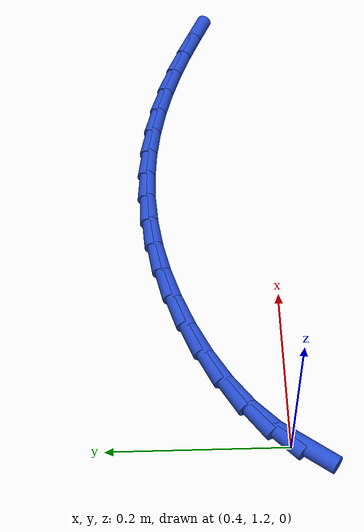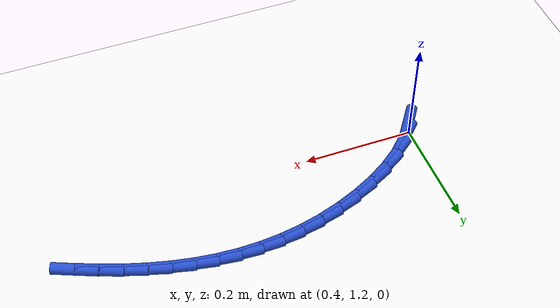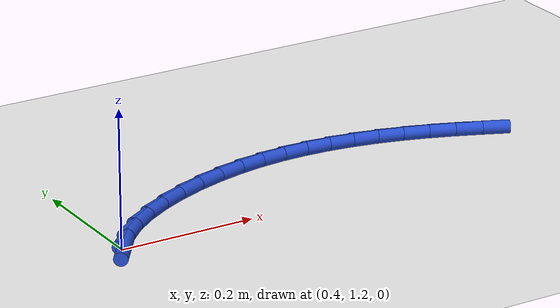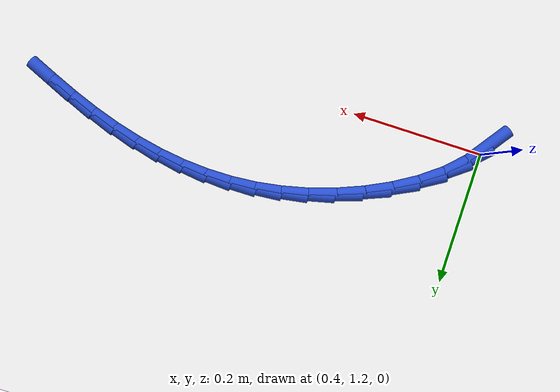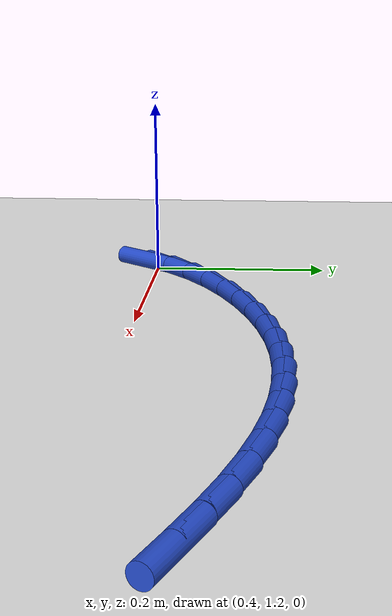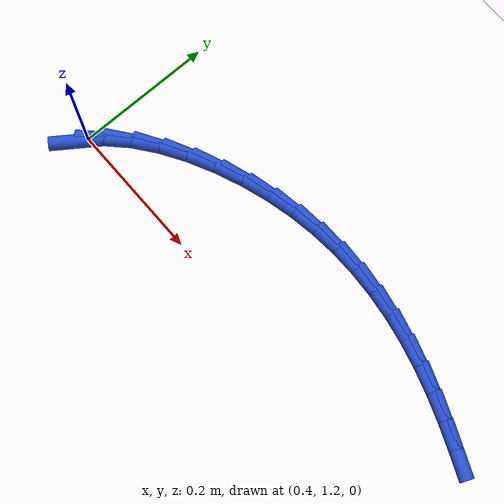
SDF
<sdf version="1.6">
 <world name="default">
  <model name="ground_plane">
   <static>1</static>
   <link name="link">
    <collision name="collision">
     <geometry><plane><normal>0 0 1</normal><size>100 100</size></plane></geometry>
     <surface><friction><ode><mu>100</mu><mu2>50</mu2></ode></friction></surface>
    </collision>
    <visual name="visual">
     <cast_shadows>0</cast_shadows>
     <geometry><plane><normal>0 0 1</normal><size>100 100</size></plane></geometry>
     <material>
      <script><uri>file://media/materials/scripts/gazebo.material</uri><name>Gazebo/WhiteGlow</name></script>
     </material>
    </visual>
   </link>
  </model>
  <model name="line">
   <link name="link_38">
    <pose>0.39670655453103376 1.1863122022002985 0.01 0 1.57 0.9529801354702475</pose>
    <collision name="collision">
     <geometry><cylinder><radius>0.01</radius><length>0.08</length></cylinder></geometry>
    </collision>
    <visual name="visual">
     <material>
      <script><name>Gazebo/Blue</name><uri>file://media/materials/scripts/gazebo.material</uri></script>
     </material>
     <geometry><cylinder><radius>0.01</radius><length>0.08</length></cylinder></geometry>
    </visual>
   </link>
   <link name="link_39">
    <pose>0.41750016089791586 1.2155735303888286 0.01 0 1.57 0.7839739822737973</pose>
    <collision name="collision">
     <geometry><cylinder><radius>0.01</radius><length>0.08</length></cylinder></geometry>
    </collision>
    <visual name="visual">
     <material>
      <script><name>Gazebo/Blue</name><uri>file://media/materials/scripts/gazebo.material</uri></script>
     </material>
     <geometry><cylinder><radius>0.01</radius><length>0.08</length></cylinder></geometry>
    </visual>
   </link>
   <link name="link_40">
    <pose>0.44456933664141324 1.2425657129143055 0.01 0 1.57 0.6530637935543421</pose>
    <collision name="collision">
     <geometry><cylinder><radius>0.01</radius><length>0.08</length></cylinder></geometry>
    </collision>
    <visual name="visual">
     <material>
      <script><name>Gazebo/Blue</name><uri>file://media/materials/scripts/gazebo.material</uri></script>
     </material>
     <geometry><cylinder><radius>0.01</radius><length>0.08</length></cylinder></geometry>
    </visual>
   </link>
   <link name="link_41">
    <pose>0.4766159019289341 1.2670829406731736 0.01 0 1.57 0.5486318522291008</pose>
    <collision name="collision">
     <geometry><cylinder><radius>0.01</radius><length>0.08</length></cylinder></geometry>
    </collision>
    <visual name="visual">
     <material>
      <script><name>Gazebo/Blue</name><uri>file://media/materials/scripts/gazebo.material</uri></script>
     </material>
     <geometry><cylinder><radius>0.01</radius><length>0.08</length></cylinder></geometry>
    </visual>
   </link>
   <link name="link_42">
    <pose>0.5123416769278868 1.2889194045618773 0.01 0 1.57 0.4614721665277679</pose>
    <collision name="collision">
     <geometry><cylinder><radius>0.01</radius><length>0.08</length></cylinder></geometry>
    </collision>
    <visual name="visual">
     <material>
      <script><name>Gazebo/Blue</name><uri>file://media/materials/scripts/gazebo.material</uri></script>
     </material>
     <geometry><cylinder><radius>0.01</radius><length>0.08</length></cylinder></geometry>
    </visual>
   </link>
   <link name="link_43">
    <pose>0.5504484818056792 1.3078692954768614 0.01 0 1.57 0.38449573136063264</pose>
    <collision name="collision">
     <geometry><cylinder><radius>0.01</radius><length>0.08</length></cylinder></geometry>
    </collision>
    <visual name="visual">
     <material>
      <script><name>Gazebo/Blue</name><uri>file://media/materials/scripts/gazebo.material</uri></script>
     </material>
     <geometry><cylinder><radius>0.01</radius><length>0.08</length></cylinder></geometry>
    </visual>
   </link>
   <link name="link_44">
    <pose>0.5896381367297198 1.323726804314571 0.01 0 1.57 0.31152956802972026</pose>
    <collision name="collision">
     <geometry><cylinder><radius>0.01</radius><length>0.08</length></cylinder></geometry>
    </collision>
    <visual name="visual">
     <material>
      <script><name>Gazebo/Blue</name><uri>file://media/materials/scripts/gazebo.material</uri></script>
     </material>
     <geometry><cylinder><radius>0.01</radius><length>0.08</length></cylinder></geometry>
    </visual>
   </link>
   <link name="link_45">
    <pose>0.6287358213996848 1.3363168393668832 0.01 0 1.57 0.2373969253806306</pose>
    <collision name="collision">
     <geometry><cylinder><radius>0.01</radius><length>0.08</length></cylinder></geometry>
    </collision>
    <visual name="visual">
     <material>
      <script><name>Gazebo/Blue</name><uri>file://media/materials/scripts/gazebo.material</uri></script>
     </material>
     <geometry><cylinder><radius>0.01</radius><length>0.08</length></cylinder></geometry>
    </visual>
   </link>
   <link name="link_46">
    <pose>0.6674286118320828 1.3456789272004055 0.01 0 1.57 0.16196937053756663</pose>
    <collision name="collision">
     <geometry><cylinder><radius>0.01</radius><length>0.08</length></cylinder></geometry>
    </collision>
    <visual name="visual">
     <material>
      <script><name>Gazebo/Blue</name><uri>file://media/materials/scripts/gazebo.material</uri></script>
     </material>
     <geometry><cylinder><radius>0.01</radius><length>0.08</length></cylinder></geometry>
    </visual>
   </link>
   <link name="link_47">
    <pose>0.7057712244809662 1.351944139449157 0.01 0 1.57 0.0865083251069434</pose>
    <collision name="collision">
     <geometry><cylinder><radius>0.01</radius><length>0.08</length></cylinder></geometry>
    </collision>
    <visual name="visual">
     <material>
      <script><name>Gazebo/Blue</name><uri>file://media/materials/scripts/gazebo.material</uri></script>
     </material>
     <geometry><cylinder><radius>0.01</radius><length>0.08</length></cylinder></geometry>
    </visual>
   </link>
   <link name="link_48">
    <pose>0.7438197455437329 1.3552438888229303 0.01 0 1.57 0.012316035726078168</pose>
    <collision name="collision">
     <geometry><cylinder><radius>0.01</radius><length>0.08</length></cylinder></geometry>
    </collision>
    <visual name="visual">
     <material>
      <script><name>Gazebo/Blue</name><uri>file://media/materials/scripts/gazebo.material</uri></script>
     </material>
     <geometry><cylinder><radius>0.01</radius><length>0.08</length></cylinder></geometry>
    </visual>
   </link>
   <link name="link_49">
    <pose>0.781630261217781 1.3557095880315186 0.01 0 1.57 -0.059377943456974634</pose>
    <collision name="collision">
     <geometry><cylinder><radius>0.01</radius><length>0.08</length></cylinder></geometry>
    </collision>
    <visual name="visual">
     <material>
      <script><name>Gazebo/Blue</name><uri>file://media/materials/scripts/gazebo.material</uri></script>
     </material>
     <geometry><cylinder><radius>0.01</radius><length>0.08</length></cylinder></geometry>
    </visual>
   </link>
   <link name="link_50">
    <pose>0.81925885770051 1.353472649784716 0.01 0 1.57 -0.12751261156599117</pose>
    <collision name="collision">
     <geometry><cylinder><radius>0.01</radius><length>0.08</length></cylinder></geometry>
    </collision>
    <visual name="visual">
     <material>
      <script><name>Gazebo/Blue</name><uri>file://media/materials/scripts/gazebo.material</uri></script>
     </material>
     <geometry><cylinder><radius>0.01</radius><length>0.08</length></cylinder></geometry>
    </visual>
   </link>
   <link name="link_51">
    <pose>0.8567616211893175 1.3486644867923152 0.01 0 1.57 -0.19125848973156906</pose>
    <collision name="collision">
     <geometry><cylinder><radius>0.01</radius><length>0.08</length></cylinder></geometry>
    </collision>
    <visual name="visual">
     <material>
      <script><name>Gazebo/Blue</name><uri>file://media/materials/scripts/gazebo.material</uri></script>
     </material>
     <geometry><cylinder><radius>0.01</radius><length>0.08</length></cylinder></geometry>
    </visual>
   </link>
   <link name="link_52">
    <pose>0.8941946378816017 1.3414165117641086 0.01 0 1.57 -0.25004124684386453</pose>
    <collision name="collision">
     <geometry><cylinder><radius>0.01</radius><length>0.08</length></cylinder></geometry>
    </collision>
    <visual name="visual">
     <material>
      <script><name>Gazebo/Blue</name><uri>file://media/materials/scripts/gazebo.material</uri></script>
     </material>
     <geometry><cylinder><radius>0.01</radius><length>0.08</length></cylinder></geometry>
    </visual>
   </link>
   <link name="link_53">
    <pose>0.9316139939747614 1.331860137409891 0.01 0 1.57 -0.30353050864730835</pose>
    <collision name="collision">
     <geometry><cylinder><radius>0.01</radius><length>0.08</length></cylinder></geometry>
    </collision>
    <visual name="visual">
     <material>
      <script><name>Gazebo/Blue</name><uri>file://media/materials/scripts/gazebo.material</uri></script>
     </material>
     <geometry><cylinder><radius>0.01</radius><length>0.08</length></cylinder></geometry>
    </visual>
   </link>
   <link name="link_54">
    <pose>0.9690757756661942 1.3201267764394538 0.01 0 1.57 -0.3515337976598853</pose>
    <collision name="collision">
     <geometry><cylinder><radius>0.01</radius><length>0.08</length></cylinder></geometry>
    </collision>
    <visual name="visual">
     <material>
      <script><name>Gazebo/Blue</name><uri>file://media/materials/scripts/gazebo.material</uri></script>
     </material>
     <geometry><cylinder><radius>0.01</radius><length>0.08</length></cylinder></geometry>
    </visual>
   </link>
   <link name="link_55">
    <pose>1.0066352988292842 1.3063511587819612 0.01 0 1.57 -0.3889637020447253</pose>
    <collision name="collision">
     <geometry><cylinder><radius>0.01</radius><length>0.08</length></cylinder></geometry>
    </collision>
    <visual name="visual">
     <material>
      <script><name>Gazebo/Blue</name><uri>file://media/materials/scripts/gazebo.material</uri></script>
     </material>
     <geometry><cylinder><radius>0.01</radius><length>0.08</length></cylinder></geometry>
    </visual>
   </link>
   <link name="link_56">
    <pose>1.0442896545424143 1.2909187457651587 0.01 0 1.57 -0.40818677197106557</pose>
    <collision name="collision">
     <geometry><cylinder><radius>0.01</radius><length>0.08</length></cylinder></geometry>
    </collision>
    <visual name="visual">
     <material>
      <script><name>Gazebo/Blue</name><uri>file://media/materials/scripts/gazebo.material</uri></script>
     </material>
     <geometry><cylinder><radius>0.01</radius><length>0.08</length></cylinder></geometry>
    </visual>
   </link>
  </model>
 </world>
</sdf>
